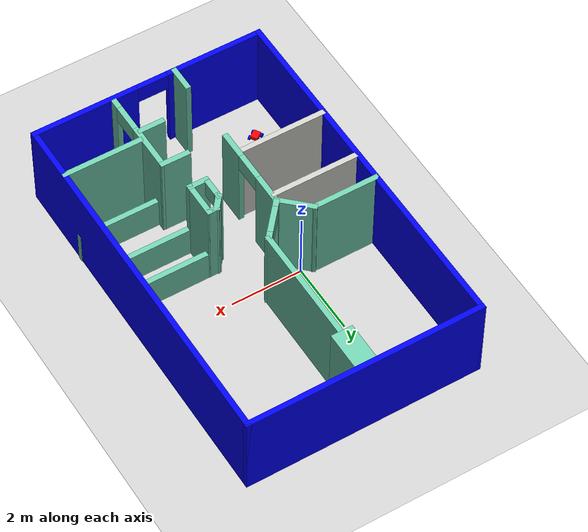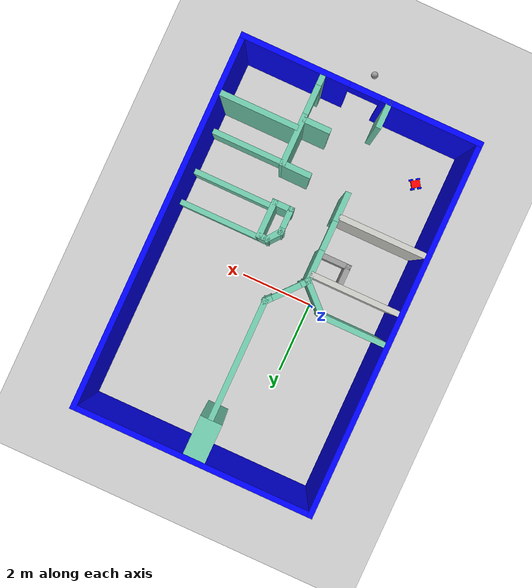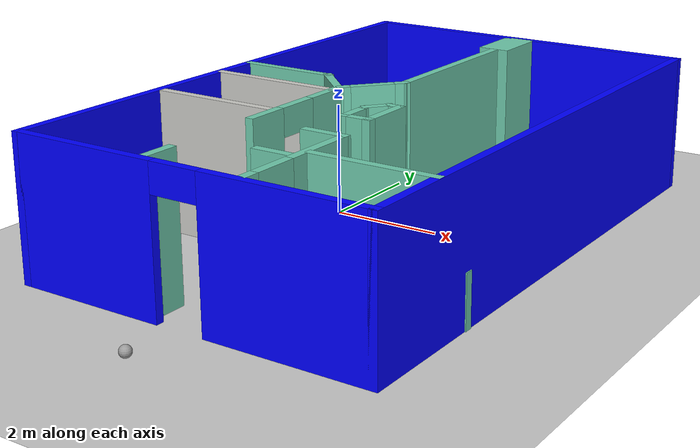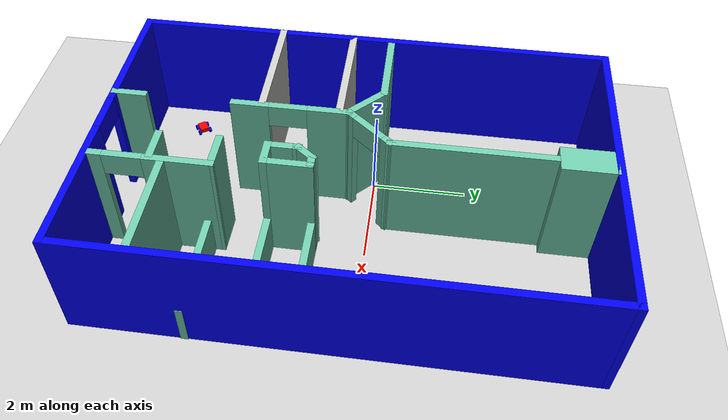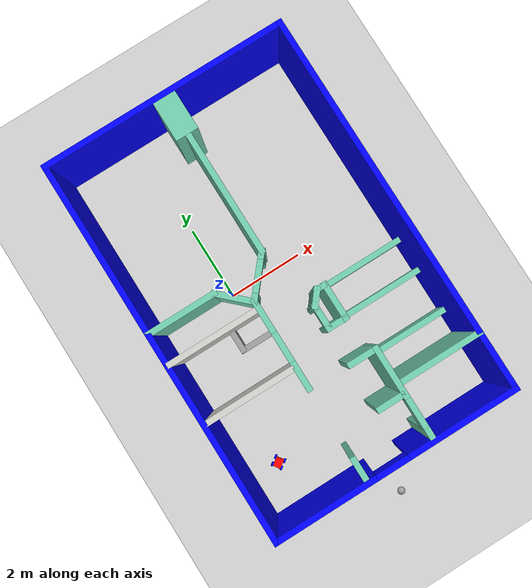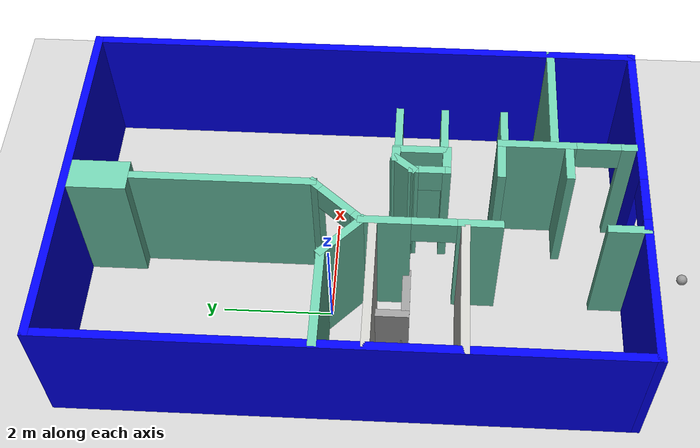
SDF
<sdf version="1.6">
 <world name="default">
  <model name="ground_plane">
   <static>1</static>
   <link name="link">
    <collision name="collision">
     <geometry><plane><normal>0 0 1</normal><size>100 100</size></plane></geometry>
     <surface><friction><ode><mu>100</mu><mu2>50</mu2></ode></friction></surface>
    </collision>
    <visual name="visual">
     <cast_shadows>0</cast_shadows>
     <geometry><plane><normal>0 0 1</normal><size>100 100</size></plane></geometry>
     <material>
      <script><uri>file://media/materials/scripts/gazebo.material</uri><name>Gazebo/Grey</name></script>
     </material>
    </visual>
   </link>
  </model>
  <model name="myApartment">
   <pose>1.16769 -0.36236 0 0 -0 0</pose>
   <link name="Wall_43">
    <pose>-0.008813 -5.05 0 0 -0 0</pose>
    <visual name="Wall_43_Visual_0">
     <pose>-1.91902 0 1.25 0 -0 0</pose>
     <geometry><box><size>2.76196 0.15 2.5</size></box></geometry>
     <material>
      <script><uri>file://media/materials/scripts/gazebo.material</uri><name>Gazebo/Grey</name></script>
      <ambient>0 0 1 1</ambient>
     </material>
     <meta><layer>0</layer></meta>
    </visual>
    <collision name="Wall_43_Collision_0">
     <geometry><box><size>2.76196 0.15 2.5</size></box></geometry>
     <pose>-1.91902 0 1.25 0 -0 0</pose>
    </collision>
    <visual name="Wall_43_Visual_1">
     <pose>1.81248 0 1.25 0 -0 0</pose>
     <geometry><box><size>2.97504 0.15 2.5</size></box></geometry>
     <material>
      <script><uri>file://media/materials/scripts/gazebo.material</uri><name>Gazebo/Grey</name></script>
      <ambient>0 0 1 1</ambient>
     </material>
     <meta><layer>0</layer></meta>
    </visual>
    <collision name="Wall_43_Collision_1">
     <geometry><box><size>2.97504 0.15 2.5</size></box></geometry>
     <pose>1.81248 0 1.25 0 -0 0</pose>
    </collision>
    <visual name="Wall_43_Visual_2">
     <pose>-0.106539 0 2.25 0 -0 0</pose>
     <geometry><box><size>0.863 0.15 0.5</size></box></geometry>
     <material>
      <script><uri>file://media/materials/scripts/gazebo.material</uri><name>Gazebo/Grey</name></script>
      <ambient>0 0 1 1</ambient>
     </material>
     <meta><layer>0</layer></meta>
    </visual>
    <collision name="Wall_43_Collision_2">
     <geometry><box><size>0.863 0.15 0.5</size></box></geometry>
     <pose>-0.106539 0 2.25 0 -0 0</pose>
    </collision>
   </link>
   <link name="Wall_45">
    <collision name="Wall_45_Collision">
     <geometry><box><size>10.25 0.15 2.5</size></box></geometry>
     <pose>0 0 1.25 0 -0 0</pose>
    </collision>
    <visual name="Wall_45_Visual">
     <pose>0 0 1.25 0 -0 0</pose>
     <geometry><box><size>10.25 0.15 2.5</size></box></geometry>
     <material>
      <script><uri>file://media/materials/scripts/gazebo.material</uri><name>Gazebo/Grey</name></script>
      <ambient>0 0 1 1</ambient>
     </material>
     <meta><layer>0</layer></meta>
    </visual>
    <pose>-3.23381 0 0 0 -0 1.5708</pose>
   </link>
   <link name="Wall_47">
    <collision name="Wall_47_Collision">
     <geometry><box><size>10.25 0.15 2.5</size></box></geometry>
     <pose>0 0 1.25 0 -0 0</pose>
    </collision>
    <visual name="Wall_47_Visual">
     <pose>0 0 1.25 0 -0 0</pose>
     <geometry><box><size>10.25 0.15 2.5</size></box></geometry>
     <material>
      <script><uri>file://media/materials/scripts/gazebo.material</uri><name>Gazebo/Grey</name></script>
      <ambient>0 0 1 1</ambient>
     </material>
     <meta><layer>0</layer></meta>
    </visual>
    <pose>3.21619 0 0 0 -0 1.5708</pose>
   </link>
   <link name="Wall_49">
    <collision name="Wall_49_Collision">
     <geometry><box><size>6.6 0.15 2.5</size></box></geometry>
     <pose>0 0 1.25 0 -0 0</pose>
    </collision>
    <visual name="Wall_49_Visual">
     <pose>0 0 1.25 0 -0 0</pose>
     <geometry><box><size>6.6 0.15 2.5</size></box></geometry>
     <material>
      <script><uri>file://media/materials/scripts/gazebo.material</uri><name>Gazebo/Grey</name></script>
      <ambient>0 0 1 1</ambient>
     </material>
     <meta><layer>0</layer></meta>
    </visual>
    <pose>-0.008813 5.05 0 0 -0 0</pose>
   </link>
   <link name="Wall_51">
    <collision name="Wall_51_Collision">
     <geometry><box><size>3.3 0.15 2.5</size></box></geometry>
     <pose>0 0 1.25 0 -0 0</pose>
    </collision>
    <visual name="Wall_51_Visual">
     <pose>0 0 1.25 0 -0 0</pose>
     <geometry><box><size>3.3 0.15 2.5</size></box></geometry>
     <material>
      <script><uri>file://media/materials/scripts/gazebo.material</uri><name>Gazebo/Grey</name></script>
      <ambient>0.435294 0.796078 0.67451 1</ambient>
     </material>
     <meta><layer>0</layer></meta>
    </visual>
    <pose>-0.007935 2.28619 0 0 0 -1.5708</pose>
   </link>
   <link name="Wall_53">
    <pose>-0.38178 0.276036 0 0 0 -2.28056</pose>
    <visual name="Wall_53_Visual_0">
     <pose>-0.512108 0 1.25 0 -0 0</pose>
     <geometry><box><size>0.273158 0.15 2.5</size></box></geometry>
     <material>
      <script><uri>file://media/materials/scripts/gazebo.material</uri><name>Gazebo/Grey</name></script>
      <ambient>0.435294 0.796078 0.67451 1</ambient>
     </material>
     <meta><layer>0</layer></meta>
    </visual>
    <collision name="Wall_53_Collision_0">
     <geometry><box><size>0.273158 0.15 2.5</size></box></geometry>
     <pose>-0.512108 0 1.25 0 -0 0</pose>
    </collision>
    <visual name="Wall_53_Visual_1">
     <pose>0.530079 0 1.25 0 -0 0</pose>
     <geometry><box><size>0.237216 0.15 2.5</size></box></geometry>
     <material>
      <script><uri>file://media/materials/scripts/gazebo.material</uri><name>Gazebo/Grey</name></script>
      <ambient>0.435294 0.796078 0.67451 1</ambient>
     </material>
     <meta><layer>0</layer></meta>
    </visual>
    <collision name="Wall_53_Collision_1">
     <geometry><box><size>0.237216 0.15 2.5</size></box></geometry>
     <pose>0.530079 0 1.25 0 -0 0</pose>
    </collision>
    <visual name="Wall_53_Visual_2">
     <pose>0.017971 0 2.25 0 -0 0</pose>
     <geometry><box><size>0.787 0.15 0.5</size></box></geometry>
     <material>
      <script><uri>file://media/materials/scripts/gazebo.material</uri><name>Gazebo/Grey</name></script>
      <ambient>0.435294 0.796078 0.67451 1</ambient>
     </material>
     <meta><layer>0</layer></meta>
    </visual>
    <collision name="Wall_53_Collision_2">
     <geometry><box><size>0.787 0.15 0.5</size></box></geometry>
     <pose>0.017971 0 2.25 0 -0 0</pose>
    </collision>
   </link>
   <link name="Wall_55">
    <collision name="Wall_55_Collision">
     <geometry><box><size>1.9 0.15 2.5</size></box></geometry>
     <pose>0 0 1.25 0 -0 0</pose>
    </collision>
    <visual name="Wall_55_Visual">
     <pose>0 0 1.25 0 -0 0</pose>
     <geometry><box><size>1.9 0.15 2.5</size></box></geometry>
     <material>
      <script><uri>file://media/materials/scripts/gazebo.material</uri><name>Gazebo/Grey</name></script>
      <ambient>0.435294 0.796078 0.67451 1</ambient>
     </material>
     <meta><layer>0</layer></meta>
    </visual>
    <pose>-2.33557 0.458424 0 0 -0 0</pose>
   </link>
   <link name="Wall_57">
    <collision name="Wall_57_Collision">
     <geometry><box><size>1.10227 0.15 2.5</size></box></geometry>
     <pose>0 0 1.25 0 -0 0</pose>
    </collision>
    <visual name="Wall_57_Visual">
     <pose>0 0 1.25 0 -0 0</pose>
     <geometry><box><size>1.10227 0.15 2.5</size></box></geometry>
     <material>
      <script><uri>file://media/materials/scripts/gazebo.material</uri><name>Gazebo/Grey</name></script>
      <ambient>0.435294 0.796078 0.67451 1</ambient>
     </material>
     <meta><layer>0</layer></meta>
    </visual>
    <pose>-1.11622 0.129598 0 0 0 -0.762334</pose>
   </link>
   <link name="Wall_59">
    <pose>-0.771864 -1.36203 0 0 0 -1.5708</pose>
    <visual name="Wall_59_Visual_0">
     <pose>-0.788458 0 1.25 0 -0 0</pose>
     <geometry><box><size>0.923084 0.15 2.5</size></box></geometry>
     <material>
      <script><uri>file://media/materials/scripts/gazebo.material</uri><name>Gazebo/Grey</name></script>
      <ambient>0.435294 0.796078 0.67451 1</ambient>
     </material>
     <meta><layer>0</layer></meta>
    </visual>
    <collision name="Wall_59_Collision_0">
     <geometry><box><size>0.923084 0.15 2.5</size></box></geometry>
     <pose>-0.788458 0 1.25 0 -0 0</pose>
    </collision>
    <visual name="Wall_59_Visual_1">
     <pose>0.855042 0 1.25 0 -0 0</pose>
     <geometry><box><size>0.789916 0.15 2.5</size></box></geometry>
     <material>
      <script><uri>file://media/materials/scripts/gazebo.material</uri><name>Gazebo/Grey</name></script>
      <ambient>0.435294 0.796078 0.67451 1</ambient>
     </material>
     <meta><layer>0</layer></meta>
    </visual>
    <collision name="Wall_59_Collision_1">
     <geometry><box><size>0.789916 0.15 2.5</size></box></geometry>
     <pose>0.855042 0 1.25 0 -0 0</pose>
    </collision>
    <visual name="Wall_59_Visual_2">
     <pose>0.066584 0 2.25 0 -0 0</pose>
     <geometry><box><size>0.787 0.15 0.5</size></box></geometry>
     <material>
      <script><uri>file://media/materials/scripts/gazebo.material</uri><name>Gazebo/Grey</name></script>
      <ambient>0.435294 0.796078 0.67451 1</ambient>
     </material>
     <meta><layer>0</layer></meta>
    </visual>
    <collision name="Wall_59_Collision_2">
     <geometry><box><size>0.787 0.15 0.5</size></box></geometry>
     <pose>0.066584 0 2.25 0 -0 0</pose>
    </collision>
   </link>
   <link name="Wall_61">
    <collision name="Wall_61_Collision">
     <geometry><box><size>2.5 0.15 2.5</size></box></geometry>
     <pose>0 0 1.25 0 -0 0</pose>
    </collision>
    <visual name="Wall_61_Visual">
     <pose>0 0 1.25 0 -0 0</pose>
     <geometry><box><size>2.5 0.15 2.5</size></box></geometry>
     <material>
      <script><uri>file://media/materials/scripts/gazebo.material</uri><name>Gazebo/CeilingTiled</name></script>
      <ambient>1 1 1 1</ambient>
     </material>
     <meta><layer>0</layer></meta>
    </visual>
    <pose>-2.05565 -1.96316 0 0 -0 0</pose>
   </link>
   <link name="Wall_63">
    <collision name="Wall_63_Collision">
     <geometry><box><size>2.5 0.15 2.5</size></box></geometry>
     <pose>0 0 1.25 0 -0 0</pose>
    </collision>
    <visual name="Wall_63_Visual">
     <pose>0 0 1.25 0 -0 0</pose>
     <geometry><box><size>2.5 0.15 2.5</size></box></geometry>
     <material>
      <script><uri>file://media/materials/scripts/gazebo.material</uri><name>Gazebo/CeilingTiled</name></script>
      <ambient>1 1 1 1</ambient>
     </material>
     <meta><layer>0</layer></meta>
    </visual>
    <pose>-2.00031 -0.382654 0 0 -0 0</pose>
   </link>
   <link name="Wall_65">
    <collision name="Wall_65_Collision">
     <geometry><box><size>0.75 0.15 2.5</size></box></geometry>
     <pose>0 0 1.25 0 -0 0</pose>
    </collision>
    <visual name="Wall_65_Visual">
     <pose>0 0 1.25 0 -0 0</pose>
     <geometry><box><size>0.75 0.15 2.5</size></box></geometry>
     <material>
      <script><uri>file://media/materials/scripts/gazebo.material</uri><name>Gazebo/Grey</name></script>
      <ambient>0.435294 0.796078 0.67451 1</ambient>
     </material>
     <meta><layer>0</layer></meta>
    </visual>
    <pose>-0.772788 -4.7331 0 0 -0 1.5708</pose>
   </link>
   <link name="Wall_67">
    <collision name="Wall_67_Collision">
     <geometry><box><size>2.25 0.15 2.5</size></box></geometry>
     <pose>0 0 1.25 0 -0 0</pose>
    </collision>
    <visual name="Wall_67_Visual">
     <pose>0 0 1.25 0 -0 0</pose>
     <geometry><box><size>2.25 0.15 2.5</size></box></geometry>
     <material>
      <script><uri>file://media/materials/scripts/gazebo.material</uri><name>Gazebo/Grey</name></script>
      <ambient>0.435294 0.796078 0.67451 1</ambient>
     </material>
     <meta><layer>0</layer></meta>
    </visual>
    <pose>2.15531 -3.53426 0 0 -0 3.14159</pose>
   </link>
   <link name="Wall_71">
    <pose>1.01051 -3.75737 0 0 0 -1.5708</pose>
    <visual name="Wall_71_Visual_0">
     <pose>-0.539996 0 1.25 0 -0 0</pose>
     <geometry><box><size>1.40789 0.15 2.5</size></box></geometry>
     <material>
      <script><uri>file://media/materials/scripts/gazebo.material</uri><name>Gazebo/Grey</name></script>
      <ambient>0.435294 0.796078 0.67451 1</ambient>
     </material>
     <meta><layer>0</layer></meta>
    </visual>
    <collision name="Wall_71_Collision_0">
     <geometry><box><size>1.40789 0.15 2.5</size></box></geometry>
     <pose>-0.539996 0 1.25 0 -0 0</pose>
    </collision>
    <visual name="Wall_71_Visual_1">
     <pose>1.09745 0 1.25 0 -0 0</pose>
     <geometry><box><size>0.292991 0.15 2.5</size></box></geometry>
     <material>
      <script><uri>file://media/materials/scripts/gazebo.material</uri><name>Gazebo/Grey</name></script>
      <ambient>0.435294 0.796078 0.67451 1</ambient>
     </material>
     <meta><layer>0</layer></meta>
    </visual>
    <collision name="Wall_71_Collision_1">
     <geometry><box><size>0.292991 0.15 2.5</size></box></geometry>
     <pose>1.09745 0 1.25 0 -0 0</pose>
    </collision>
    <visual name="Wall_71_Visual_2">
     <pose>0.55745 0 2.25 0 -0 0</pose>
     <geometry><box><size>0.787 0.15 0.5</size></box></geometry>
     <material>
      <script><uri>file://media/materials/scripts/gazebo.material</uri><name>Gazebo/Grey</name></script>
      <ambient>0.435294 0.796078 0.67451 1</ambient>
     </material>
     <meta><layer>0</layer></meta>
    </visual>
    <collision name="Wall_71_Collision_2">
     <geometry><box><size>0.787 0.15 0.5</size></box></geometry>
     <pose>0.55745 0 2.25 0 -0 0</pose>
    </collision>
   </link>
   <link name="Wall_73">
    <collision name="Wall_73_Collision">
     <geometry><box><size>0.841205 0.15 2.5</size></box></geometry>
     <pose>0 0 1.25 0 -0 0</pose>
    </collision>
    <visual name="Wall_73_Visual">
     <pose>0 0 1.25 0 -0 0</pose>
     <geometry><box><size>0.841205 0.15 2.5</size></box></geometry>
     <material>
      <script><uri>file://media/materials/scripts/gazebo.material</uri><name>Gazebo/Grey</name></script>
      <ambient>0.435294 0.796078 0.67451 1</ambient>
     </material>
     <meta><layer>0</layer></meta>
    </visual>
    <pose>0.664925 -2.5854 0 0 0 -0.008772</pose>
   </link>
   <link name="Wall_75">
    <collision name="Wall_75_Collision">
     <geometry><box><size>0.75 0.15 2.5</size></box></geometry>
     <pose>0 0 1.25 0 -0 0</pose>
    </collision>
    <visual name="Wall_75_Visual">
     <pose>0 0 1.25 0 -0 0</pose>
     <geometry><box><size>0.75 0.15 2.5</size></box></geometry>
     <material>
      <script><uri>file://media/materials/scripts/gazebo.material</uri><name>Gazebo/Grey</name></script>
      <ambient>0.435294 0.796078 0.67451 1</ambient>
     </material>
     <meta><layer>0</layer></meta>
    </visual>
    <pose>0.637525 -3.7889 0 0 -0 0</pose>
   </link>
   <link name="Wall_77">
    <pose>0.349273 -1.32325 0 0 -0 1.5708</pose>
    <visual name="Wall_77_Visual_0">
     <pose>-0.320215 0 1.25 0 -0 0</pose>
     <geometry><box><size>0.109569 0.15 2.5</size></box></geometry>
     <material>
      <script><uri>file://media/materials/scripts/gazebo.material</uri><name>Gazebo/Grey</name></script>
      <ambient>0.435294 0.796078 0.67451 1</ambient>
     </material>
     <meta><layer>0</layer></meta>
    </visual>
    <collision name="Wall_77_Collision_0">
     <geometry><box><size>0.109569 0.15 2.5</size></box></geometry>
     <pose>-0.320215 0 1.25 0 -0 0</pose>
    </collision>
    <visual name="Wall_77_Visual_1">
     <pose>0.284785 0 1.25 0 -0 0</pose>
     <geometry><box><size>0.180431 0.15 2.5</size></box></geometry>
     <material>
      <script><uri>file://media/materials/scripts/gazebo.material</uri><name>Gazebo/Grey</name></script>
      <ambient>0.435294 0.796078 0.67451 1</ambient>
     </material>
     <meta><layer>0</layer></meta>
    </visual>
    <collision name="Wall_77_Collision_1">
     <geometry><box><size>0.180431 0.15 2.5</size></box></geometry>
     <pose>0.284785 0 1.25 0 -0 0</pose>
    </collision>
    <visual name="Wall_77_Visual_2">
     <pose>-0.035431 0 2.25 0 -0 0</pose>
     <geometry><box><size>0.46 0.15 0.5</size></box></geometry>
     <material>
      <script><uri>file://media/materials/scripts/gazebo.material</uri><name>Gazebo/Grey</name></script>
      <ambient>0.435294 0.796078 0.67451 1</ambient>
     </material>
     <meta><layer>0</layer></meta>
    </visual>
    <collision name="Wall_77_Collision_2">
     <geometry><box><size>0.46 0.15 0.5</size></box></geometry>
     <pose>-0.035431 0 2.25 0 -0 0</pose>
    </collision>
   </link>
   <link name="Wall_78">
    <collision name="Wall_78_Collision">
     <geometry><box><size>0.538402 0.15 2.5</size></box></geometry>
     <pose>0 0 1.25 0 -0 0</pose>
    </collision>
    <visual name="Wall_78_Visual">
     <pose>0 0 1.25 0 -0 0</pose>
     <geometry><box><size>0.538402 0.15 2.5</size></box></geometry>
     <material>
      <script><uri>file://media/materials/scripts/gazebo.material</uri><name>Gazebo/Grey</name></script>
      <ambient>0.435294 0.796078 0.67451 1</ambient>
     </material>
     <meta><layer>0</layer></meta>
    </visual>
    <pose>0.470532 -0.871556 0 0 -0 0.896431</pose>
   </link>
   <link name="Wall_79">
    <collision name="Wall_79_Collision">
     <geometry><box><size>0.32 0.15 2.5</size></box></geometry>
     <pose>0 0 1.25 0 -0 0</pose>
    </collision>
    <visual name="Wall_79_Visual">
     <pose>0 0 1.25 0 -0 0</pose>
     <geometry><box><size>0.32 0.15 2.5</size></box></geometry>
     <material>
      <script><uri>file://media/materials/scripts/gazebo.material</uri><name>Gazebo/Grey</name></script>
      <ambient>0.435294 0.796078 0.67451 1</ambient>
     </material>
     <meta><layer>0</layer></meta>
    </visual>
    <pose>0.676791 -0.719865 0 0 -0 0</pose>
   </link>
   <link name="Wall_83">
    <collision name="Wall_83_Collision">
     <geometry><box><size>0.6 0.15 2.5</size></box></geometry>
     <pose>0 0 1.25 0 -0 0</pose>
    </collision>
    <visual name="Wall_83_Visual">
     <pose>0 0 1.25 0 -0 0</pose>
     <geometry><box><size>0.6 0.15 2.5</size></box></geometry>
     <material>
      <script><uri>file://media/materials/scripts/gazebo.material</uri><name>Gazebo/Grey</name></script>
      <ambient>0.435294 0.796078 0.67451 1</ambient>
     </material>
     <meta><layer>0</layer></meta>
    </visual>
    <pose>0.574043 -1.62308 0 0 -0 0.000727</pose>
   </link>
   <link name="Wall_85">
    <collision name="Wall_85_Collision">
     <geometry><box><size>1.05059 0.15 2.5</size></box></geometry>
     <pose>0 0 1.25 0 -0 0</pose>
    </collision>
    <visual name="Wall_85_Visual">
     <pose>0 0 1.25 0 -0 0</pose>
     <geometry><box><size>1.05059 0.15 2.5</size></box></geometry>
     <material>
      <script><uri>file://media/materials/scripts/gazebo.material</uri><name>Gazebo/Grey</name></script>
      <ambient>0.435294 0.796078 0.67451 1</ambient>
     </material>
     <meta><layer>0</layer></meta>
    </visual>
    <pose>0.798813 -1.17292 0 0 -0 1.5708</pose>
   </link>
   <link name="Wall_87">
    <collision name="Wall_87_Collision">
     <geometry><box><size>1.1 0.6 2.5</size></box></geometry>
     <pose>0 0 1.25 0 -0 0</pose>
    </collision>
    <visual name="Wall_87_Visual">
     <pose>0 0 1.25 0 -0 0</pose>
     <geometry><box><size>1.1 0.6 2.5</size></box></geometry>
     <material>
      <script><uri>file://media/materials/scripts/gazebo.material</uri><name>Gazebo/Grey</name></script>
      <ambient>0.435294 0.796078 0.67451 1</ambient>
     </material>
     <meta><layer>0</layer></meta>
    </visual>
    <pose>-0.029832 4.48175 0 0 0 -1.5708</pose>
   </link>
   <link name="Wall_89">
    <collision name="Wall_89_Collision">
     <geometry><box><size>2.5 0.15 0.91</size></box></geometry>
     <pose>0 0 0.455 0 -0 0</pose>
    </collision>
    <visual name="Wall_89_Visual">
     <pose>0 0 0.455 0 -0 0</pose>
     <geometry><box><size>2.5 0.15 0.91</size></box></geometry>
     <material>
      <script><uri>file://media/materials/scripts/gazebo.material</uri><name>Gazebo/Grey</name></script>
      <ambient>0.435294 0.796078 0.67451 1</ambient>
     </material>
     <meta><layer>0</layer></meta>
    </visual>
    <pose>1.97381 -0.72292 0 0 -0 0</pose>
   </link>
   <link name="Wall_91">
    <collision name="Wall_91_Collision">
     <geometry><box><size>2.5 0.15 0.91</size></box></geometry>
     <pose>0 0 0.455 0 -0 0</pose>
    </collision>
    <visual name="Wall_91_Visual">
     <pose>0 0 0.455 0 -0 0</pose>
     <geometry><box><size>2.5 0.15 0.91</size></box></geometry>
     <material>
      <script><uri>file://media/materials/scripts/gazebo.material</uri><name>Gazebo/Grey</name></script>
      <ambient>0.435294 0.796078 0.67451 1</ambient>
     </material>
     <meta><layer>0</layer></meta>
    </visual>
    <pose>1.97381 -1.62292 0 0 -0 0</pose>
   </link>
   <link name="Wall_96">
    <collision name="Wall_96_Collision">
     <geometry><box><size>2.25 0.15 0.91</size></box></geometry>
     <pose>0 0 0.455 0 -0 0</pose>
    </collision>
    <visual name="Wall_96_Visual">
     <pose>0 0 0.455 0 -0 0</pose>
     <geometry><box><size>2.25 0.15 0.91</size></box></geometry>
     <material>
      <script><uri>file://media/materials/scripts/gazebo.material</uri><name>Gazebo/Grey</name></script>
      <ambient>0.435294 0.796078 0.67451 1</ambient>
     </material>
     <meta><layer>0</layer></meta>
    </visual>
    <pose>2.18381 -2.79792 0 0 -0 3.14159</pose>
   </link>
   <link name="Wall_98">
    <collision name="Wall_98_Collision">
     <geometry><box><size>0.75 0.15 0.914</size></box></geometry>
     <pose>0 0 0.457 0 -0 0</pose>
    </collision>
    <visual name="Wall_98_Visual">
     <pose>0 0 0.457 0 -0 0</pose>
     <geometry><box><size>0.75 0.15 0.914</size></box></geometry>
     <material>
      <script><uri>file://media/materials/scripts/gazebo.material</uri><name>Gazebo/Grey</name></script>
      <ambient>1 1 1 1</ambient>
     </material>
     <meta><layer>0</layer></meta>
    </visual>
    <pose>-1.64819 -0.68992 0 0 0 -1.5708</pose>
   </link>
   <link name="Wall_99">
    <collision name="Wall_99_Collision">
     <geometry><box><size>1 0.15 0.914</size></box></geometry>
     <pose>0 0 0.457 0 -0 0</pose>
    </collision>
    <visual name="Wall_99_Visual">
     <pose>0 0 0.457 0 -0 0</pose>
     <geometry><box><size>1 0.15 0.914</size></box></geometry>
     <material>
      <script><uri>file://media/materials/scripts/gazebo.material</uri><name>Gazebo/Grey</name></script>
      <ambient>1 1 1 1</ambient>
     </material>
     <meta><layer>0</layer></meta>
    </visual>
    <pose>-1.22319 -0.98992 0 0 -0 0</pose>
   </link>
   <static>1</static>
  </model>
  <model name="myRover_clone">
   <link name="link_0">
    <pose>-0.384707 -0.007708 0.043333 0 -0 0</pose>
    <inertial>
     <mass>1</mass>
     <inertia>
      <ixx>0.166667</ixx>
      <ixy>0</ixy>
      <ixz>0</ixz>
      <iyy>0.166667</iyy>
      <iyz>0</iyz>
      <izz>0.166667</izz>
     </inertia>
     <pose>-0.02 0 0 0 -0 0</pose>
    </inertial>
    <visual name="visual">
     <geometry><box><size>0.2 0.25 0.1</size></box></geometry>
     <material>
      <lighting>1</lighting>
      <script><uri>file://media/materials/scripts/gazebo.material</uri><name>Gazebo/Grey</name></script>
      <shader type="pixel"><normal_map>__default__</normal_map></shader>
      <ambient>1 0 0 1</ambient>
      <diffuse>0.7 0.7 0.7 1</diffuse>
      <specular>0.01 0.01 0.01 1</specular>
      <emissive>0 0 0 1</emissive>
     </material>
    </visual>
    <collision name="collision">
     <geometry><box><size>0.2 0.25 0.1</size></box></geometry>
     <surface>
      <friction>
       <ode><mu>1</mu><mu2>1</mu2><fdir1>0 0 0</fdir1><slip1>0</slip1><slip2>0</slip2></ode>
       <torsional>
        <coefficient>1</coefficient>
        <patch_radius>0</patch_radius>
        <surface_radius>0</surface_radius>
        <use_patch_radius>1</use_patch_radius>
        <ode><slip>0</slip></ode>
       </torsional>
      </friction>
      <bounce><restitution_coefficient>0</restitution_coefficient><threshold>1e+06</threshold></bounce>
      <contact>
       <collide_without_contact>0</collide_without_contact>
       <collide_without_contact_bitmask>1</collide_without_contact_bitmask>
       <collide_bitmask>1</collide_bitmask>
       <ode>
        <soft_cfm>0</soft_cfm>
        <soft_erp>0.2</soft_erp>
        <kp>1e+13</kp>
        <kd>1</kd>
        <max_vel>0.01</max_vel>
        <min_depth>0</min_depth>
       </ode>
       <bullet>
        <split_impulse>1</split_impulse>
        <split_impulse_penetration_threshold>-0.01</split_impulse_penetration_threshold>
        <soft_cfm>0</soft_cfm>
        <soft_erp>0.2</soft_erp>
        <kp>1e+13</kp>
        <kd>1</kd>
       </bullet>
      </contact>
     </surface>
    </collision>
   </link>
   <link name="link_1">
    <pose>-0.259707 -0.107708 0.003333 0 1.5707 0</pose>
    <inertial>
     <mass>1</mass>
     <inertia><ixx>0.145833</ixx><ixy>0</ixy><ixz>0</ixz><iyy>0.145833</iyy><iyz>0</iyz><izz>0.125</izz></inertia>
    </inertial>
    <visual name="visual">
     <geometry><cylinder><radius>0.06</radius><length>0.05</length></cylinder></geometry>
     <material>
      <lighting>1</lighting>
      <script><uri>file://media/materials/scripts/gazebo.material</uri><name>Gazebo/Grey</name></script>
      <shader type="pixel"><normal_map>__default__</normal_map></shader>
      <ambient>0 0 1 1</ambient>
      <diffuse>0.7 0.7 0.7 1</diffuse>
      <specular>0.01 0.01 0.01 1</specular>
      <emissive>0 0 0 1</emissive>
     </material>
    </visual>
    <collision name="collision">
     <geometry><cylinder><radius>0.06</radius><length>0.05</length></cylinder></geometry>
     <surface>
      <friction>
       <ode><mu>1</mu><mu2>1</mu2><fdir1>0 0 0</fdir1><slip1>0</slip1><slip2>0</slip2></ode>
       <torsional>
        <coefficient>1</coefficient>
        <patch_radius>0</patch_radius>
        <surface_radius>0</surface_radius>
        <use_patch_radius>1</use_patch_radius>
        <ode><slip>0</slip></ode>
       </torsional>
      </friction>
      <bounce><restitution_coefficient>0</restitution_coefficient><threshold>1e+06</threshold></bounce>
      <contact>
       <collide_without_contact>0</collide_without_contact>
       <collide_without_contact_bitmask>1</collide_without_contact_bitmask>
       <collide_bitmask>1</collide_bitmask>
       <ode>
        <soft_cfm>0</soft_cfm>
        <soft_erp>0.2</soft_erp>
        <kp>1e+13</kp>
        <kd>1</kd>
        <max_vel>0.01</max_vel>
        <min_depth>0</min_depth>
       </ode>
       <bullet>
        <split_impulse>1</split_impulse>
        <split_impulse_penetration_threshold>-0.01</split_impulse_penetration_threshold>
        <soft_cfm>0</soft_cfm>
        <soft_erp>0.2</soft_erp>
        <kp>1e+13</kp>
        <kd>1</kd>
       </bullet>
      </contact>
     </surface>
    </collision>
   </link>
   <link name="link_1_clone">
    <pose>-0.259707 0.092292 0.003333 0 1.5707 0</pose>
    <inertial>
     <mass>1</mass>
     <inertia><ixx>0.145833</ixx><ixy>0</ixy><ixz>0</ixz><iyy>0.145833</iyy><iyz>0</iyz><izz>0.125</izz></inertia>
    </inertial>
    <visual name="visual">
     <geometry><cylinder><radius>0.06</radius><length>0.05</length></cylinder></geometry>
     <material>
      <lighting>1</lighting>
      <script><uri>file://media/materials/scripts/gazebo.material</uri><name>Gazebo/Grey</name></script>
      <shader type="pixel"><normal_map>__default__</normal_map></shader>
      <ambient>0 0 1 1</ambient>
      <diffuse>0.7 0.7 0.7 1</diffuse>
      <specular>0.01 0.01 0.01 1</specular>
      <emissive>0 0 0 1</emissive>
     </material>
    </visual>
    <collision name="collision">
     <geometry><cylinder><radius>0.06</radius><length>0.05</length></cylinder></geometry>
     <surface>
      <friction>
       <ode><mu>1</mu><mu2>1</mu2><fdir1>0 0 0</fdir1><slip1>0</slip1><slip2>0</slip2></ode>
       <torsional>
        <coefficient>1</coefficient>
        <patch_radius>0</patch_radius>
        <surface_radius>0</surface_radius>
        <use_patch_radius>1</use_patch_radius>
        <ode><slip>0</slip></ode>
       </torsional>
      </friction>
      <bounce><restitution_coefficient>0</restitution_coefficient><threshold>1e+06</threshold></bounce>
      <contact>
       <collide_without_contact>0</collide_without_contact>
       <collide_without_contact_bitmask>1</collide_without_contact_bitmask>
       <collide_bitmask>1</collide_bitmask>
       <ode>
        <soft_cfm>0</soft_cfm>
        <soft_erp>0.2</soft_erp>
        <kp>1e+13</kp>
        <kd>1</kd>
        <max_vel>0.01</max_vel>
        <min_depth>0</min_depth>
       </ode>
       <bullet>
        <split_impulse>1</split_impulse>
        <split_impulse_penetration_threshold>-0.01</split_impulse_penetration_threshold>
        <soft_cfm>0</soft_cfm>
        <soft_erp>0.2</soft_erp>
        <kp>1e+13</kp>
        <kd>1</kd>
       </bullet>
      </contact>
     </surface>
    </collision>
   </link>
   <link name="link_1_clone_0">
    <pose>-0.509707 -0.107708 0.003333 0 1.5707 0</pose>
    <inertial>
     <mass>1</mass>
     <inertia><ixx>0.145833</ixx><ixy>0</ixy><ixz>0</ixz><iyy>0.145833</iyy><iyz>0</iyz><izz>0.125</izz></inertia>
    </inertial>
    <visual name="visual">
     <geometry><cylinder><radius>0.06</radius><length>0.05</length></cylinder></geometry>
     <material>
      <lighting>1</lighting>
      <script><uri>file://media/materials/scripts/gazebo.material</uri><name>Gazebo/Grey</name></script>
      <shader type="pixel"><normal_map>__default__</normal_map></shader>
      <ambient>0 0 1 1</ambient>
      <diffuse>0.7 0.7 0.7 1</diffuse>
      <specular>0.01 0.01 0.01 1</specular>
      <emissive>0 0 0 1</emissive>
     </material>
    </visual>
    <collision name="collision">
     <geometry><cylinder><radius>0.06</radius><length>0.05</length></cylinder></geometry>
     <surface>
      <friction>
       <ode><mu>1</mu><mu2>1</mu2><fdir1>0 0 0</fdir1><slip1>0</slip1><slip2>0</slip2></ode>
       <torsional>
        <coefficient>1</coefficient>
        <patch_radius>0</patch_radius>
        <surface_radius>0</surface_radius>
        <use_patch_radius>1</use_patch_radius>
        <ode><slip>0</slip></ode>
       </torsional>
      </friction>
      <bounce><restitution_coefficient>0</restitution_coefficient><threshold>1e+06</threshold></bounce>
      <contact>
       <collide_without_contact>0</collide_without_contact>
       <collide_without_contact_bitmask>1</collide_without_contact_bitmask>
       <collide_bitmask>1</collide_bitmask>
       <ode>
        <soft_cfm>0</soft_cfm>
        <soft_erp>0.2</soft_erp>
        <kp>1e+13</kp>
        <kd>1</kd>
        <max_vel>0.01</max_vel>
        <min_depth>0</min_depth>
       </ode>
       <bullet>
        <split_impulse>1</split_impulse>
        <split_impulse_penetration_threshold>-0.01</split_impulse_penetration_threshold>
        <soft_cfm>0</soft_cfm>
        <soft_erp>0.2</soft_erp>
        <kp>1e+13</kp>
        <kd>1</kd>
       </bullet>
      </contact>
     </surface>
    </collision>
   </link>
   <link name="link_1_clone_1">
    <pose>-0.509707 0.092292 0.003333 0 1.5707 0</pose>
    <inertial>
     <mass>1</mass>
     <inertia><ixx>0.145833</ixx><ixy>0</ixy><ixz>0</ixz><iyy>0.145833</iyy><iyz>0</iyz><izz>0.125</izz></inertia>
    </inertial>
    <visual name="visual">
     <geometry><cylinder><radius>0.06</radius><length>0.05</length></cylinder></geometry>
     <material>
      <lighting>1</lighting>
      <script><uri>file://media/materials/scripts/gazebo.material</uri><name>Gazebo/Grey</name></script>
      <shader type="pixel"><normal_map>__default__</normal_map></shader>
      <ambient>0 0 1 1</ambient>
      <diffuse>0.7 0.7 0.7 1</diffuse>
      <specular>0.01 0.01 0.01 1</specular>
      <emissive>0 0 0 1</emissive>
     </material>
    </visual>
    <collision name="collision">
     <geometry><cylinder><radius>0.06</radius><length>0.05</length></cylinder></geometry>
     <surface>
      <friction>
       <ode><mu>1</mu><mu2>1</mu2><fdir1>0 0 0</fdir1><slip1>0</slip1><slip2>0</slip2></ode>
       <torsional>
        <coefficient>1</coefficient>
        <patch_radius>0</patch_radius>
        <surface_radius>0</surface_radius>
        <use_patch_radius>1</use_patch_radius>
        <ode><slip>0</slip></ode>
       </torsional>
      </friction>
      <bounce><restitution_coefficient>0</restitution_coefficient><threshold>1e+06</threshold></bounce>
      <contact>
       <collide_without_contact>0</collide_without_contact>
       <collide_without_contact_bitmask>1</collide_without_contact_bitmask>
       <collide_bitmask>1</collide_bitmask>
       <ode>
        <soft_cfm>0</soft_cfm>
        <soft_erp>0.2</soft_erp>
        <kp>1e+13</kp>
        <kd>1</kd>
        <max_vel>0.01</max_vel>
        <min_depth>0</min_depth>
       </ode>
       <bullet>
        <split_impulse>1</split_impulse>
        <split_impulse_penetration_threshold>-0.01</split_impulse_penetration_threshold>
        <soft_cfm>0</soft_cfm>
        <soft_erp>0.2</soft_erp>
        <kp>1e+13</kp>
        <kd>1</kd>
       </bullet>
      </contact>
     </surface>
    </collision>
   </link>
   <model name="robot"><static>0</static><pose>1.92353 0.038537 -0.056667 0 -0 0</pose></model>
   <joint name="link_0_JOINT_0" type="revolute">
    <parent>link_0</parent>
    <child>link_1</child>
    <axis>
     <xyz>0 0 1</xyz>
     <use_parent_model_frame>0</use_parent_model_frame>
     <limit>
      <lower>-1.79769e+308</lower>
      <upper>1.79769e+308</upper>
      <effort>-1</effort>
      <velocity>-1</velocity>
     </limit>
     <dynamics>
      <spring_reference>0</spring_reference>
      <spring_stiffness>0</spring_stiffness>
      <damping>0</damping>
     </dynamics>
    </axis>
    <physics>
     <ode><limit><cfm>0</cfm><erp>0.2</erp></limit><suspension><cfm>0</cfm><erp>0.2</erp></suspension></ode>
    </physics>
   </joint>
   <joint name="link_0_JOINT_1" type="revolute">
    <parent>link_0</parent>
    <child>link_1_clone</child>
    <axis>
     <xyz>0 0 1</xyz>
     <use_parent_model_frame>0</use_parent_model_frame>
     <limit>
      <lower>-1.79769e+308</lower>
      <upper>1.79769e+308</upper>
      <effort>-1</effort>
      <velocity>-1</velocity>
     </limit>
     <dynamics>
      <spring_reference>0</spring_reference>
      <spring_stiffness>0</spring_stiffness>
      <damping>0</damping>
     </dynamics>
    </axis>
    <physics>
     <ode><limit><cfm>0</cfm><erp>0.2</erp></limit><suspension><cfm>0</cfm><erp>0.2</erp></suspension></ode>
    </physics>
   </joint>
   <joint name="link_0_JOINT_2" type="revolute">
    <parent>link_0</parent>
    <child>link_1_clone_1</child>
    <axis>
     <xyz>0 0 1</xyz>
     <use_parent_model_frame>0</use_parent_model_frame>
     <limit>
      <lower>-1.79769e+308</lower>
      <upper>1.79769e+308</upper>
      <effort>-1</effort>
      <velocity>-1</velocity>
     </limit>
     <dynamics>
      <spring_reference>0</spring_reference>
      <spring_stiffness>0</spring_stiffness>
      <damping>0</damping>
     </dynamics>
    </axis>
    <physics>
     <ode><limit><cfm>0</cfm><erp>0.2</erp></limit><suspension><cfm>0</cfm><erp>0.2</erp></suspension></ode>
    </physics>
   </joint>
   <joint name="link_0_JOINT_3" type="revolute">
    <parent>link_0</parent>
    <child>link_1_clone_0</child>
    <axis>
     <xyz>0 0 1</xyz>
     <use_parent_model_frame>0</use_parent_model_frame>
     <limit>
      <lower>-1.79769e+308</lower>
      <upper>1.79769e+308</upper>
      <effort>-1</effort>
      <velocity>-1</velocity>
     </limit>
     <dynamics>
      <spring_reference>0</spring_reference>
      <spring_stiffness>0</spring_stiffness>
      <damping>0</damping>
     </dynamics>
    </axis>
    <physics>
     <ode><limit><cfm>0</cfm><erp>0.2</erp></limit><suspension><cfm>0</cfm><erp>0.2</erp></suspension></ode>
    </physics>
   </joint>
   <static>0</static>
   <pose>-1.05313 -4.56497 0.056669 -1e-06 2e-06 -0.981745</pose>
  </model>
  <model name="my_ball">
   <link name="link_0">
    <inertial>
     <mass>1</mass>
     <inertia><ixx>0.1</ixx><ixy>0</ixy><ixz>0</ixz><iyy>0.1</iyy><iyz>0</iyz><izz>0.1</izz></inertia>
    </inertial>
    <visual name="visual">
     <geometry><sphere><radius>0.1</radius></sphere></geometry>
     <material>
      <lighting>1</lighting>
      <script><uri>file://media/materials/scripts/gazebo.material</uri><name>Gazebo/Grey</name></script>
      <shader type="pixel"><normal_map>__default__</normal_map></shader>
      <ambient>1 1 1 1</ambient>
      <diffuse>1 1 1 1</diffuse>
      <specular>1 1 1 1</specular>
      <emissive>1 1 1 1</emissive>
     </material>
    </visual>
    <collision name="collision">
     <geometry><sphere><radius>0.1</radius></sphere></geometry>
     <surface>
      <friction>
       <ode><mu>1</mu><mu2>1</mu2><fdir1>0 0 0</fdir1><slip1>0</slip1><slip2>0</slip2></ode>
       <torsional>
        <coefficient>1</coefficient>
        <patch_radius>0</patch_radius>
        <surface_radius>0</surface_radius>
        <use_patch_radius>1</use_patch_radius>
        <ode><slip>0</slip></ode>
       </torsional>
      </friction>
      <bounce><restitution_coefficient>0</restitution_coefficient><threshold>1e+06</threshold></bounce>
      <contact>
       <collide_without_contact>0</collide_without_contact>
       <collide_without_contact_bitmask>1</collide_without_contact_bitmask>
       <collide_bitmask>1</collide_bitmask>
       <ode>
        <soft_cfm>0</soft_cfm>
        <soft_erp>0.2</soft_erp>
        <kp>1e+13</kp>
        <kd>1</kd>
        <max_vel>0.01</max_vel>
        <min_depth>0</min_depth>
       </ode>
       <bullet>
        <split_impulse>1</split_impulse>
        <split_impulse_penetration_threshold>-0.01</split_impulse_penetration_threshold>
        <soft_cfm>0</soft_cfm>
        <soft_erp>0.2</soft_erp>
        <kp>1e+13</kp>
        <kd>1</kd>
       </bullet>
      </contact>
     </surface>
    </collision>
   </link>
   <static>0</static>
   <pose>1.00161 -6.51476 0.1 0 -0 0</pose>
  </model>
 </world>
</sdf>
